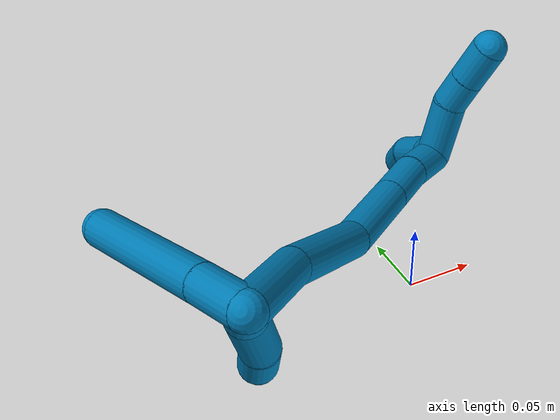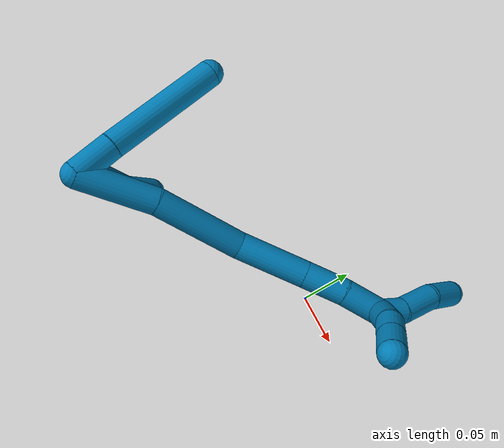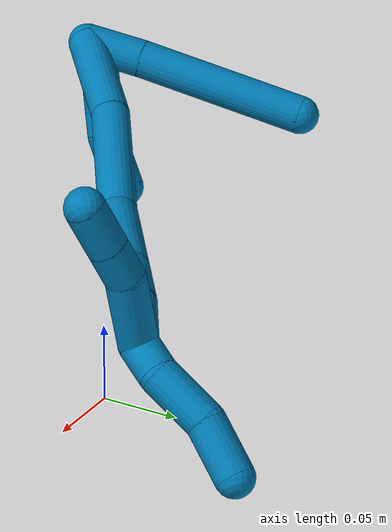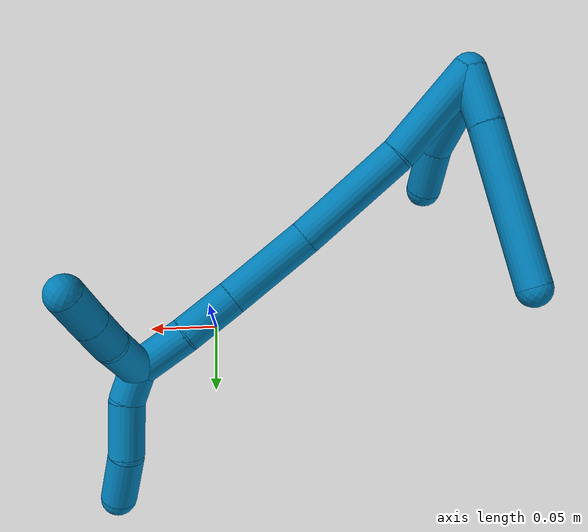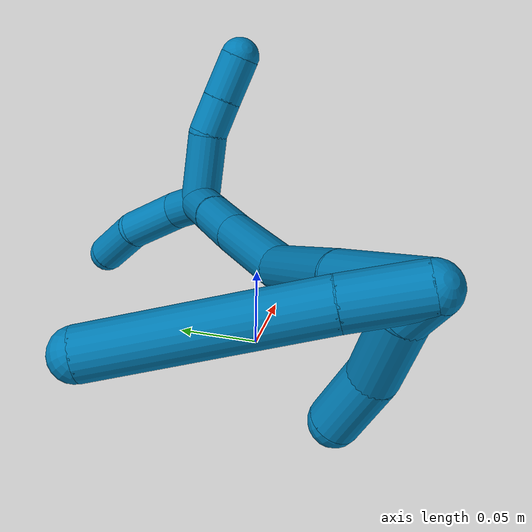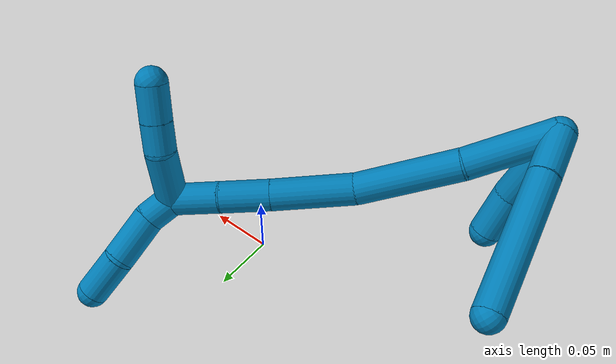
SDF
<sdf version="1.7">
 <world name="default">
  <model name="9">
   <static>0</static>
   <link name="9">
    <collision name="collision-cylinder-e_1_2_8">
     <pose>-0.013555 0.0091 -0.010491 -2.42706 -0.773268 1.65747</pose>
     <geometry><cylinder><radius>0.0125</radius><length>0.038814</length></cylinder></geometry>
     <surface>
      <friction><ode><mu>1.16</mu><mu2>1.16</mu2><slip1>0</slip1><slip2>0</slip2></ode></friction>
      <contact><ode><kp>1e+06</kp><kd>1</kd><max_vel>0</max_vel><min_depth>0.001</min_depth></ode></contact>
     </surface>
    </collision>
    <visual name="visual-cylinder-e_1_2_8">
     <pose>-0.013555 0.0091 -0.010491 -2.42706 -0.773268 1.65747</pose>
     <geometry><cylinder><radius>0.0125</radius><length>0.038814</length></cylinder></geometry>
     <material><ambient>0 0.490196 0.709804 1</ambient></material>
    </visual>
    <collision name="collision-cylinder-e_2_8_6">
     <pose>-0.065569 0.042523 -0.052919 -2.49073 -0.763967 1.7443</pose>
     <geometry><cylinder><radius>0.0125</radius><length>0.111186</length></cylinder></geometry>
     <surface>
      <friction><ode><mu>1.16</mu><mu2>1.16</mu2><slip1>0</slip1><slip2>0</slip2></ode></friction>
      <contact><ode><kp>1e+06</kp><kd>1</kd><max_vel>0</max_vel><min_depth>0.001</min_depth></ode></contact>
     </surface>
    </collision>
    <visual name="visual-cylinder-e_2_8_6">
     <pose>-0.065569 0.042523 -0.052919 -2.49073 -0.763967 1.7443</pose>
     <geometry><cylinder><radius>0.0125</radius><length>0.111186</length></cylinder></geometry>
     <material><ambient>0 0.490196 0.709804 1</ambient></material>
    </visual>
    <collision name="collision-cylinder-e_1_2_9">
     <pose>-0.003086 -0.001304 -0.009613 3.00673 -0.308024 -2.32092</pose>
     <geometry><cylinder><radius>0.0125</radius><length>0.02036</length></cylinder></geometry>
     <surface>
      <friction><ode><mu>1.16</mu><mu2>1.16</mu2><slip1>0</slip1><slip2>0</slip2></ode></friction>
      <contact><ode><kp>1e+06</kp><kd>1</kd><max_vel>0</max_vel><min_depth>0.001</min_depth></ode></contact>
     </surface>
    </collision>
    <visual name="visual-cylinder-e_1_2_9">
     <pose>-0.003086 -0.001304 -0.009613 3.00673 -0.308024 -2.32092</pose>
     <geometry><cylinder><radius>0.0125</radius><length>0.02036</length></cylinder></geometry>
     <material><ambient>0 0.490196 0.709804 1</ambient></material>
    </visual>
    <collision name="collision-cylinder-e_2_9_10">
     <pose>-0.008746 -0.011332 -0.039147 2.72884 -0.117763 -0.548943</pose>
     <geometry><cylinder><radius>0.0125</radius><length>0.043799</length></cylinder></geometry>
     <surface>
      <friction><ode><mu>1.16</mu><mu2>1.16</mu2><slip1>0</slip1><slip2>0</slip2></ode></friction>
      <contact><ode><kp>1e+06</kp><kd>1</kd><max_vel>0</max_vel><min_depth>0.001</min_depth></ode></contact>
     </surface>
    </collision>
    <visual name="visual-cylinder-e_2_9_10">
     <pose>-0.008746 -0.011332 -0.039147 2.72884 -0.117763 -0.548943</pose>
     <geometry><cylinder><radius>0.0125</radius><length>0.043799</length></cylinder></geometry>
     <material><ambient>0 0.490196 0.709804 1</ambient></material>
    </visual>
    <collision name="collision-cylinder-e_3_10_5">
     <pose>-0.016932 -0.024699 -0.075442 2.86529 -0.318571 -1.71475</pose>
     <geometry><cylinder><radius>0.0125</radius><length>0.035842</length></cylinder></geometry>
     <surface>
      <friction><ode><mu>1.16</mu><mu2>1.16</mu2><slip1>0</slip1><slip2>0</slip2></ode></friction>
      <contact><ode><kp>1e+06</kp><kd>1</kd><max_vel>0</max_vel><min_depth>0.001</min_depth></ode></contact>
     </surface>
    </collision>
    <visual name="visual-cylinder-e_3_10_5">
     <pose>-0.016932 -0.024699 -0.075442 2.86529 -0.318571 -1.71475</pose>
     <geometry><cylinder><radius>0.0125</radius><length>0.035842</length></cylinder></geometry>
     <material><ambient>0 0.490196 0.709804 1</ambient></material>
    </visual>
    <collision name="collision-cylinder-e_1_2_11">
     <pose>0.006146 0.010881 -0.03334 -2.82613 0.173478 -1.00064</pose>
     <geometry><cylinder><radius>0.0125</radius><length>0.07121</length></cylinder></geometry>
     <surface>
      <friction><ode><mu>1.16</mu><mu2>1.16</mu2><slip1>0</slip1><slip2>0</slip2></ode></friction>
      <contact><ode><kp>1e+06</kp><kd>1</kd><max_vel>0</max_vel><min_depth>0.001</min_depth></ode></contact>
     </surface>
    </collision>
    <visual name="visual-cylinder-e_1_2_11">
     <pose>0.006146 0.010881 -0.03334 -2.82613 0.173478 -1.00064</pose>
     <geometry><cylinder><radius>0.0125</radius><length>0.07121</length></cylinder></geometry>
     <material><ambient>0 0.490196 0.709804 1</ambient></material>
    </visual>
    <collision name="collision-cylinder-e_2_11_12">
     <pose>0.024836 0.029658 -0.106196 -2.94436 0.301782 -1.98785</pose>
     <geometry><cylinder><radius>0.0125</radius><length>0.084411</length></cylinder></geometry>
     <surface>
      <friction><ode><mu>1.16</mu><mu2>1.16</mu2><slip1>0</slip1><slip2>0</slip2></ode></friction>
      <contact><ode><kp>1e+06</kp><kd>1</kd><max_vel>0</max_vel><min_depth>0.001</min_depth></ode></contact>
     </surface>
    </collision>
    <visual name="visual-cylinder-e_2_11_12">
     <pose>0.024836 0.029658 -0.106196 -2.94436 0.301782 -1.98785</pose>
     <geometry><cylinder><radius>0.0125</radius><length>0.084411</length></cylinder></geometry>
     <material><ambient>0 0.490196 0.709804 1</ambient></material>
    </visual>
    <collision name="collision-cylinder-e_3_12_13">
     <pose>0.048886 0.052079 -0.172734 -2.6484 0.358832 -1.24871</pose>
     <geometry><cylinder><radius>0.0125</radius><length>0.065527</length></cylinder></geometry>
     <surface>
      <friction><ode><mu>1.16</mu><mu2>1.16</mu2><slip1>0</slip1><slip2>0</slip2></ode></friction>
      <contact><ode><kp>1e+06</kp><kd>1</kd><max_vel>0</max_vel><min_depth>0.001</min_depth></ode></contact>
     </surface>
    </collision>
    <visual name="visual-cylinder-e_3_12_13">
     <pose>0.048886 0.052079 -0.172734 -2.6484 0.358832 -1.24871</pose>
     <geometry><cylinder><radius>0.0125</radius><length>0.065527</length></cylinder></geometry>
     <material><ambient>0 0.490196 0.709804 1</ambient></material>
    </visual>
    <collision name="collision-cylinder-e_4_13_14">
     <pose>0.06766 0.075744 -0.215738 -2.62203 0.375955 -1.24236</pose>
     <geometry><cylinder><radius>0.0125</radius><length>0.039591</length></cylinder></geometry>
     <surface>
      <friction><ode><mu>1.16</mu><mu2>1.16</mu2><slip1>0</slip1><slip2>0</slip2></ode></friction>
      <contact><ode><kp>1e+06</kp><kd>1</kd><max_vel>0</max_vel><min_depth>0.001</min_depth></ode></contact>
     </surface>
    </collision>
    <visual name="visual-cylinder-e_4_13_14">
     <pose>0.06766 0.075744 -0.215738 -2.62203 0.375955 -1.24236</pose>
     <geometry><cylinder><radius>0.0125</radius><length>0.039591</length></cylinder></geometry>
     <material><ambient>0 0.490196 0.709804 1</ambient></material>
    </visual>
    <collision name="collision-cylinder-e_5_14_1">
     <pose>0.082996 0.091794 -0.24823 -2.74531 0.423531 -1.63914</pose>
     <geometry><cylinder><radius>0.0125</radius><length>0.039262</length></cylinder></geometry>
     <surface>
      <friction><ode><mu>1.16</mu><mu2>1.16</mu2><slip1>0</slip1><slip2>0</slip2></ode></friction>
      <contact><ode><kp>1e+06</kp><kd>1</kd><max_vel>0</max_vel><min_depth>0.001</min_depth></ode></contact>
     </surface>
    </collision>
    <visual name="visual-cylinder-e_5_14_1">
     <pose>0.082996 0.091794 -0.24823 -2.74531 0.423531 -1.63914</pose>
     <geometry><cylinder><radius>0.0125</radius><length>0.039262</length></cylinder></geometry>
     <material><ambient>0 0.490196 0.709804 1</ambient></material>
    </visual>
    <collision name="collision-cylinder-e_1_1_15">
     <pose>0.088962 0.101933 -0.276007 -2.86236 -0.177478 1.12884</pose>
     <geometry><cylinder><radius>0.0125</radius><length>0.023817</length></cylinder></geometry>
     <surface>
      <friction><ode><mu>1.16</mu><mu2>1.16</mu2><slip1>0</slip1><slip2>0</slip2></ode></friction>
      <contact><ode><kp>1e+06</kp><kd>1</kd><max_vel>0</max_vel><min_depth>0.001</min_depth></ode></contact>
     </surface>
    </collision>
    <visual name="visual-cylinder-e_1_1_15">
     <pose>0.088962 0.101933 -0.276007 -2.86236 -0.177478 1.12884</pose>
     <geometry><cylinder><radius>0.0125</radius><length>0.023817</length></cylinder></geometry>
     <material><ambient>0 0.490196 0.709804 1</ambient></material>
    </visual>
    <collision name="collision-cylinder-e_2_15_16">
     <pose>0.077762 0.109542 -0.30423 -2.88887 -0.479121 2.18236</pose>
     <geometry><cylinder><radius>0.0125</radius><length>0.039467</length></cylinder></geometry>
     <surface>
      <friction><ode><mu>1.16</mu><mu2>1.16</mu2><slip1>0</slip1><slip2>0</slip2></ode></friction>
      <contact><ode><kp>1e+06</kp><kd>1</kd><max_vel>0</max_vel><min_depth>0.001</min_depth></ode></contact>
     </surface>
    </collision>
    <visual name="visual-cylinder-e_2_15_16">
     <pose>0.077762 0.109542 -0.30423 -2.88887 -0.479121 2.18236</pose>
     <geometry><cylinder><radius>0.0125</radius><length>0.039467</length></cylinder></geometry>
     <material><ambient>0 0.490196 0.709804 1</ambient></material>
    </visual>
    <collision name="collision-cylinder-e_3_16_4">
     <pose>0.063545 0.113997 -0.338814 -3.13725 -0.282662 3.11104</pose>
     <geometry><cylinder><radius>0.0125</radius><length>0.036716</length></cylinder></geometry>
     <surface>
      <friction><ode><mu>1.16</mu><mu2>1.16</mu2><slip1>0</slip1><slip2>0</slip2></ode></friction>
      <contact><ode><kp>1e+06</kp><kd>1</kd><max_vel>0</max_vel><min_depth>0.001</min_depth></ode></contact>
     </surface>
    </collision>
    <visual name="visual-cylinder-e_3_16_4">
     <pose>0.063545 0.113997 -0.338814 -3.13725 -0.282662 3.11104</pose>
     <geometry><cylinder><radius>0.0125</radius><length>0.036716</length></cylinder></geometry>
     <material><ambient>0 0.490196 0.709804 1</ambient></material>
    </visual>
    <collision name="collision-cylinder-e_1_1_17">
     <pose>0.101438 0.114568 -0.251122 -0.861516 0.460553 -0.214636</pose>
     <geometry><cylinder><radius>0.0125</radius><length>0.046682</length></cylinder></geometry>
     <surface>
      <friction><ode><mu>1.16</mu><mu2>1.16</mu2><slip1>0</slip1><slip2>0</slip2></ode></friction>
      <contact><ode><kp>1e+06</kp><kd>1</kd><max_vel>0</max_vel><min_depth>0.001</min_depth></ode></contact>
     </surface>
    </collision>
    <visual name="visual-cylinder-e_1_1_17">
     <pose>0.101438 0.114568 -0.251122 -0.861516 0.460553 -0.214636</pose>
     <geometry><cylinder><radius>0.0125</radius><length>0.046682</length></cylinder></geometry>
     <material><ambient>0 0.490196 0.709804 1</ambient></material>
    </visual>
    <collision name="collision-cylinder-e_2_17_18">
     <pose>0.119555 0.136255 -0.230486 -0.692377 0.704055 -0.263467</pose>
     <geometry><cylinder><radius>0.0125</radius><length>0.023924</length></cylinder></geometry>
     <surface>
      <friction><ode><mu>1.16</mu><mu2>1.16</mu2><slip1>0</slip1><slip2>0</slip2></ode></friction>
      <contact><ode><kp>1e+06</kp><kd>1</kd><max_vel>0</max_vel><min_depth>0.001</min_depth></ode></contact>
     </surface>
    </collision>
    <visual name="visual-cylinder-e_2_17_18">
     <pose>0.119555 0.136255 -0.230486 -0.692377 0.704055 -0.263467</pose>
     <geometry><cylinder><radius>0.0125</radius><length>0.023924</length></cylinder></geometry>
     <material><ambient>0 0.490196 0.709804 1</ambient></material>
    </visual>
    <collision name="collision-cylinder-e_3_18_3">
     <pose>0.136823 0.149 -0.214674 -0.667041 0.705099 -0.253574</pose>
     <geometry><cylinder><radius>0.0125</radius><length>0.029394</length></cylinder></geometry>
     <surface>
      <friction><ode><mu>1.16</mu><mu2>1.16</mu2><slip1>0</slip1><slip2>0</slip2></ode></friction>
      <contact><ode><kp>1e+06</kp><kd>1</kd><max_vel>0</max_vel><min_depth>0.001</min_depth></ode></contact>
     </surface>
    </collision>
    <visual name="visual-cylinder-e_3_18_3">
     <pose>0.136823 0.149 -0.214674 -0.667041 0.705099 -0.253574</pose>
     <geometry><cylinder><radius>0.0125</radius><length>0.029394</length></cylinder></geometry>
     <material><ambient>0 0.490196 0.709804 1</ambient></material>
    </visual>
    <collision name="collision-sphere-3">
     <pose>0.146348 0.155925 -0.205881 0 -0 0</pose>
     <geometry><sphere><radius>0.0125</radius></sphere></geometry>
     <surface>
      <friction><ode><mu>1.16</mu><mu2>1.16</mu2><slip1>0</slip1><slip2>0</slip2></ode></friction>
      <contact><ode><kp>1e+06</kp><kd>1</kd><max_vel>0</max_vel><min_depth>0.001</min_depth></ode></contact>
     </surface>
    </collision>
    <visual name="visual-sphere-3">
     <pose>0.146348 0.155925 -0.205881 0 -0 0</pose>
     <geometry><sphere><radius>0.0125</radius></sphere></geometry>
     <material><ambient>0 0.490196 0.709804 1</ambient></material>
    </visual>
    <collision name="collision-sphere-5">
     <pose>-0.022545 -0.029342 -0.091815 0 -0 0</pose>
     <geometry><sphere><radius>0.0125</radius></sphere></geometry>
     <surface>
      <friction><ode><mu>1.16</mu><mu2>1.16</mu2><slip1>0</slip1><slip2>0</slip2></ode></friction>
      <contact><ode><kp>1e+06</kp><kd>1</kd><max_vel>0</max_vel><min_depth>0.001</min_depth></ode></contact>
     </surface>
    </collision>
    <visual name="visual-sphere-5">
     <pose>-0.022545 -0.029342 -0.091815 0 -0 0</pose>
     <geometry><sphere><radius>0.0125</radius></sphere></geometry>
     <material><ambient>0 0.490196 0.709804 1</ambient></material>
    </visual>
    <collision name="collision-sphere-10">
     <pose>-0.011319 -0.020056 -0.059068 0 -0 0</pose>
     <geometry><sphere><radius>0.0125</radius></sphere></geometry>
     <surface>
      <friction><ode><mu>1.16</mu><mu2>1.16</mu2><slip1>0</slip1><slip2>0</slip2></ode></friction>
      <contact><ode><kp>1e+06</kp><kd>1</kd><max_vel>0</max_vel><min_depth>0.001</min_depth></ode></contact>
     </surface>
    </collision>
    <visual name="visual-sphere-10">
     <pose>-0.011319 -0.020056 -0.059068 0 -0 0</pose>
     <geometry><sphere><radius>0.0125</radius></sphere></geometry>
     <material><ambient>0 0.490196 0.709804 1</ambient></material>
    </visual>
    <collision name="collision-sphere-6">
     <pose>-0.104028 0.066845 -0.084856 0 -0 0</pose>
     <geometry><sphere><radius>0.0125</radius></sphere></geometry>
     <surface>
      <friction><ode><mu>1.16</mu><mu2>1.16</mu2><slip1>0</slip1><slip2>0</slip2></ode></friction>
      <contact><ode><kp>1e+06</kp><kd>1</kd><max_vel>0</max_vel><min_depth>0.001</min_depth></ode></contact>
     </surface>
    </collision>
    <visual name="visual-sphere-6">
     <pose>-0.104028 0.066845 -0.084856 0 -0 0</pose>
     <geometry><sphere><radius>0.0125</radius></sphere></geometry>
     <material><ambient>0 0.490196 0.709804 1</ambient></material>
    </visual>
    <collision name="collision-sphere-9">
     <pose>-0.006173 -0.002609 -0.019225 0 -0 0</pose>
     <geometry><sphere><radius>0.0125</radius></sphere></geometry>
     <surface>
      <friction><ode><mu>1.16</mu><mu2>1.16</mu2><slip1>0</slip1><slip2>0</slip2></ode></friction>
      <contact><ode><kp>1e+06</kp><kd>1</kd><max_vel>0</max_vel><min_depth>0.001</min_depth></ode></contact>
     </surface>
    </collision>
    <visual name="visual-sphere-9">
     <pose>-0.006173 -0.002609 -0.019225 0 -0 0</pose>
     <geometry><sphere><radius>0.0125</radius></sphere></geometry>
     <material><ambient>0 0.490196 0.709804 1</ambient></material>
    </visual>
    <collision name="collision-sphere-2">
     <geometry><sphere><radius>0.0125</radius></sphere></geometry>
     <surface>
      <friction><ode><mu>1.16</mu><mu2>1.16</mu2><slip1>0</slip1><slip2>0</slip2></ode></friction>
      <contact><ode><kp>1e+06</kp><kd>1</kd><max_vel>0</max_vel><min_depth>0.001</min_depth></ode></contact>
     </surface>
    </collision>
    <visual name="visual-sphere-2">
     <geometry><sphere><radius>0.0125</radius></sphere></geometry>
     <material><ambient>0 0.490196 0.709804 1</ambient></material>
    </visual>
    <collision name="collision-sphere-8">
     <pose>-0.027111 0.018201 -0.020982 0 -0 0</pose>
     <geometry><sphere><radius>0.0125</radius></sphere></geometry>
     <surface>
      <friction><ode><mu>1.16</mu><mu2>1.16</mu2><slip1>0</slip1><slip2>0</slip2></ode></friction>
      <contact><ode><kp>1e+06</kp><kd>1</kd><max_vel>0</max_vel><min_depth>0.001</min_depth></ode></contact>
     </surface>
    </collision>
    <visual name="visual-sphere-8">
     <pose>-0.027111 0.018201 -0.020982 0 -0 0</pose>
     <geometry><sphere><radius>0.0125</radius></sphere></geometry>
     <material><ambient>0 0.490196 0.709804 1</ambient></material>
    </visual>
    <collision name="collision-sphere-11">
     <pose>0.012291 0.021762 -0.066679 0 -0 0</pose>
     <geometry><sphere><radius>0.0125</radius></sphere></geometry>
     <surface>
      <friction><ode><mu>1.16</mu><mu2>1.16</mu2><slip1>0</slip1><slip2>0</slip2></ode></friction>
      <contact><ode><kp>1e+06</kp><kd>1</kd><max_vel>0</max_vel><min_depth>0.001</min_depth></ode></contact>
     </surface>
    </collision>
    <visual name="visual-sphere-11">
     <pose>0.012291 0.021762 -0.066679 0 -0 0</pose>
     <geometry><sphere><radius>0.0125</radius></sphere></geometry>
     <material><ambient>0 0.490196 0.709804 1</ambient></material>
    </visual>
    <collision name="collision-sphere-12">
     <pose>0.03738 0.037555 -0.145713 0 -0 0</pose>
     <geometry><sphere><radius>0.0125</radius></sphere></geometry>
     <surface>
      <friction><ode><mu>1.16</mu><mu2>1.16</mu2><slip1>0</slip1><slip2>0</slip2></ode></friction>
      <contact><ode><kp>1e+06</kp><kd>1</kd><max_vel>0</max_vel><min_depth>0.001</min_depth></ode></contact>
     </surface>
    </collision>
    <visual name="visual-sphere-12">
     <pose>0.03738 0.037555 -0.145713 0 -0 0</pose>
     <geometry><sphere><radius>0.0125</radius></sphere></geometry>
     <material><ambient>0 0.490196 0.709804 1</ambient></material>
    </visual>
    <collision name="collision-sphere-13">
     <pose>0.060392 0.066602 -0.199755 0 -0 0</pose>
     <geometry><sphere><radius>0.0125</radius></sphere></geometry>
     <surface>
      <friction><ode><mu>1.16</mu><mu2>1.16</mu2><slip1>0</slip1><slip2>0</slip2></ode></friction>
      <contact><ode><kp>1e+06</kp><kd>1</kd><max_vel>0</max_vel><min_depth>0.001</min_depth></ode></contact>
     </surface>
    </collision>
    <visual name="visual-sphere-13">
     <pose>0.060392 0.066602 -0.199755 0 -0 0</pose>
     <geometry><sphere><radius>0.0125</radius></sphere></geometry>
     <material><ambient>0 0.490196 0.709804 1</ambient></material>
    </visual>
    <collision name="collision-sphere-14">
     <pose>0.074928 0.084886 -0.231721 0 -0 0</pose>
     <geometry><sphere><radius>0.0125</radius></sphere></geometry>
     <surface>
      <friction><ode><mu>1.16</mu><mu2>1.16</mu2><slip1>0</slip1><slip2>0</slip2></ode></friction>
      <contact><ode><kp>1e+06</kp><kd>1</kd><max_vel>0</max_vel><min_depth>0.001</min_depth></ode></contact>
     </surface>
    </collision>
    <visual name="visual-sphere-14">
     <pose>0.074928 0.084886 -0.231721 0 -0 0</pose>
     <geometry><sphere><radius>0.0125</radius></sphere></geometry>
     <material><ambient>0 0.490196 0.709804 1</ambient></material>
    </visual>
    <collision name="collision-sphere-1">
     <pose>0.091064 0.098702 -0.26474 0 -0 0</pose>
     <geometry><sphere><radius>0.0125</radius></sphere></geometry>
     <surface>
      <friction><ode><mu>1.16</mu><mu2>1.16</mu2><slip1>0</slip1><slip2>0</slip2></ode></friction>
      <contact><ode><kp>1e+06</kp><kd>1</kd><max_vel>0</max_vel><min_depth>0.001</min_depth></ode></contact>
     </surface>
    </collision>
    <visual name="visual-sphere-1">
     <pose>0.091064 0.098702 -0.26474 0 -0 0</pose>
     <geometry><sphere><radius>0.0125</radius></sphere></geometry>
     <material><ambient>0 0.490196 0.709804 1</ambient></material>
    </visual>
    <collision name="collision-sphere-18">
     <pose>0.127298 0.142076 -0.223467 0 -0 0</pose>
     <geometry><sphere><radius>0.0125</radius></sphere></geometry>
     <surface>
      <friction><ode><mu>1.16</mu><mu2>1.16</mu2><slip1>0</slip1><slip2>0</slip2></ode></friction>
      <contact><ode><kp>1e+06</kp><kd>1</kd><max_vel>0</max_vel><min_depth>0.001</min_depth></ode></contact>
     </surface>
    </collision>
    <visual name="visual-sphere-18">
     <pose>0.127298 0.142076 -0.223467 0 -0 0</pose>
     <geometry><sphere><radius>0.0125</radius></sphere></geometry>
     <material><ambient>0 0.490196 0.709804 1</ambient></material>
    </visual>
    <collision name="collision-sphere-15">
     <pose>0.086859 0.105163 -0.287275 0 -0 0</pose>
     <geometry><sphere><radius>0.0125</radius></sphere></geometry>
     <surface>
      <friction><ode><mu>1.16</mu><mu2>1.16</mu2><slip1>0</slip1><slip2>0</slip2></ode></friction>
      <contact><ode><kp>1e+06</kp><kd>1</kd><max_vel>0</max_vel><min_depth>0.001</min_depth></ode></contact>
     </surface>
    </collision>
    <visual name="visual-sphere-15">
     <pose>0.086859 0.105163 -0.287275 0 -0 0</pose>
     <geometry><sphere><radius>0.0125</radius></sphere></geometry>
     <material><ambient>0 0.490196 0.709804 1</ambient></material>
    </visual>
    <collision name="collision-sphere-16">
     <pose>0.068665 0.113921 -0.321185 0 -0 0</pose>
     <geometry><sphere><radius>0.0125</radius></sphere></geometry>
     <surface>
      <friction><ode><mu>1.16</mu><mu2>1.16</mu2><slip1>0</slip1><slip2>0</slip2></ode></friction>
      <contact><ode><kp>1e+06</kp><kd>1</kd><max_vel>0</max_vel><min_depth>0.001</min_depth></ode></contact>
     </surface>
    </collision>
    <visual name="visual-sphere-16">
     <pose>0.068665 0.113921 -0.321185 0 -0 0</pose>
     <geometry><sphere><radius>0.0125</radius></sphere></geometry>
     <material><ambient>0 0.490196 0.709804 1</ambient></material>
    </visual>
    <collision name="collision-sphere-4">
     <pose>0.058424 0.114074 -0.356444 0 -0 0</pose>
     <geometry><sphere><radius>0.0125</radius></sphere></geometry>
     <surface>
      <friction><ode><mu>1.16</mu><mu2>1.16</mu2><slip1>0</slip1><slip2>0</slip2></ode></friction>
      <contact><ode><kp>1e+06</kp><kd>1</kd><max_vel>0</max_vel><min_depth>0.001</min_depth></ode></contact>
     </surface>
    </collision>
    <visual name="visual-sphere-4">
     <pose>0.058424 0.114074 -0.356444 0 -0 0</pose>
     <geometry><sphere><radius>0.0125</radius></sphere></geometry>
     <material><ambient>0 0.490196 0.709804 1</ambient></material>
    </visual>
    <collision name="collision-sphere-17">
     <pose>0.111812 0.130435 -0.237504 0 -0 0</pose>
     <geometry><sphere><radius>0.0125</radius></sphere></geometry>
     <surface>
      <friction><ode><mu>1.16</mu><mu2>1.16</mu2><slip1>0</slip1><slip2>0</slip2></ode></friction>
      <contact><ode><kp>1e+06</kp><kd>1</kd><max_vel>0</max_vel><min_depth>0.001</min_depth></ode></contact>
     </surface>
    </collision>
    <visual name="visual-sphere-17">
     <pose>0.111812 0.130435 -0.237504 0 -0 0</pose>
     <geometry><sphere><radius>0.0125</radius></sphere></geometry>
     <material><ambient>0 0.490196 0.709804 1</ambient></material>
    </visual>
    <inertial>
     <pose>0.029258 0.054521 -0.14189 0 -0 0</pose>
     <mass>0.75</mass>
     <inertia>
      <ixx>-2.6e-05</ixx>
      <ixy>0</ixy>
      <ixz>0</ixz>
      <iyy>8.2e-05</iyy>
      <iyz>0</iyz>
      <izz>-8.5e-05</izz>
     </inertia>
    </inertial>
   </link>
   <pose>-0.182371 -0.121439 0.150582 0.825692 -0.261382 -0.506328</pose>
  </model>
 </world>
</sdf>
